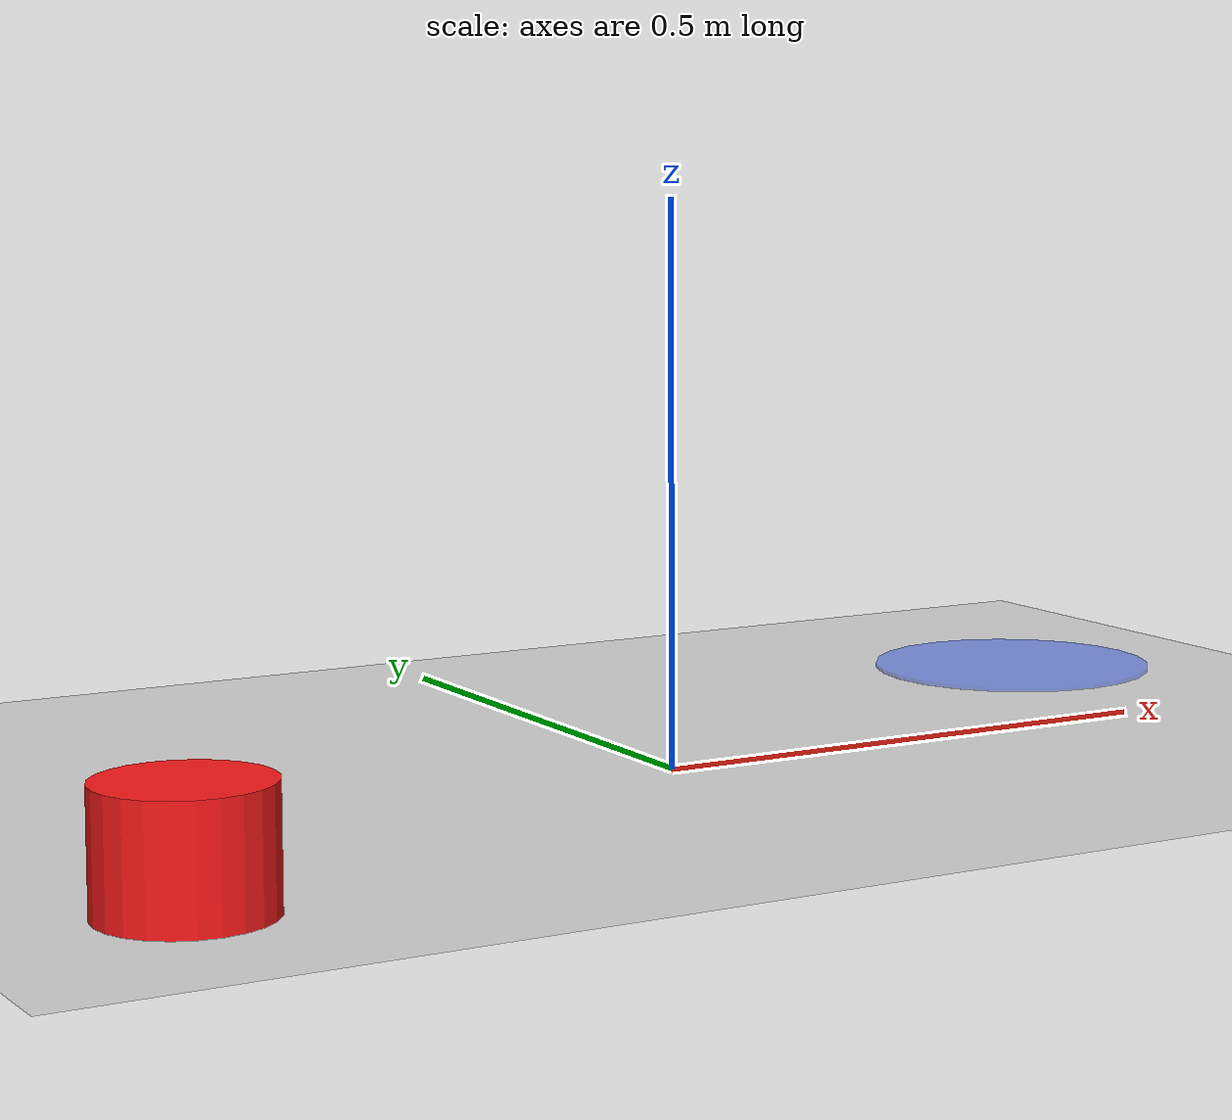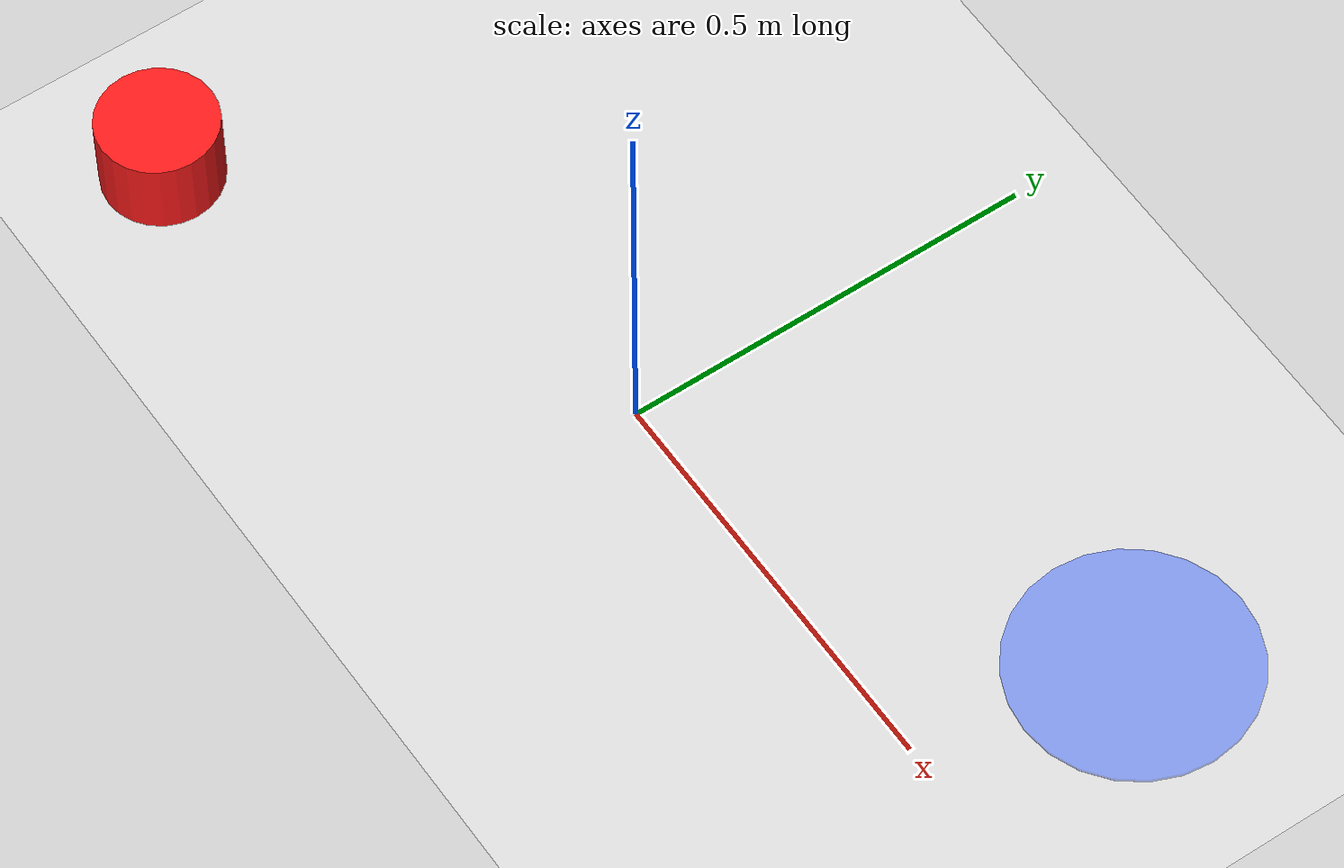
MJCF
<mujoco model="fdb_v1_push">
  <compiler angle="radian"/>
  <option timestep="0.002" gravity="0 0 -9.81" integrator="implicitfast"/>
  <default>
    <geom condim="3" friction="0.8 0.005 0.0001" solref="0.01 1"/>
  </default>
  <worldbody>
    <light name="top" pos="0 0 3" dir="0 0 -1"/>
    <geom name="floor" type="plane" size="2 2 0.1" rgba="0.85 0.85 0.85 1"/>
    <site name="target" type="cylinder" pos="0.55 0.25 0.002"
          size="0.14 0.002" rgba="0.1 0.3 1 0.45"/>
    <body name="puck" pos="-0.55 -0.25 0.051">
      <joint name="puck_x" type="slide" axis="1 0 0" damping="0.15"/>
      <joint name="puck_y" type="slide" axis="0 1 0" damping="0.15"/>
      <joint name="puck_yaw" type="hinge" axis="0 0 1" damping="0.02"/>
      <geom name="puck_geom" type="cylinder" size="0.07 0.05"
            density="500" rgba="1 0.1 0.1 1"/>
    </body>
  </worldbody>
</mujoco>
